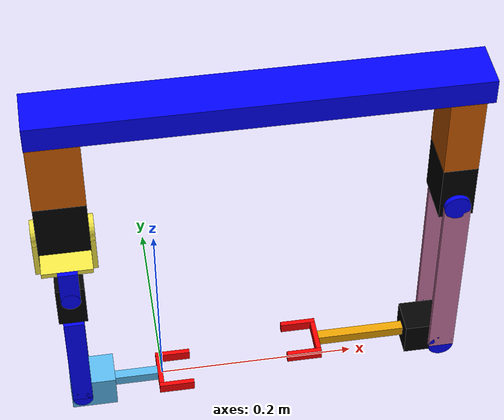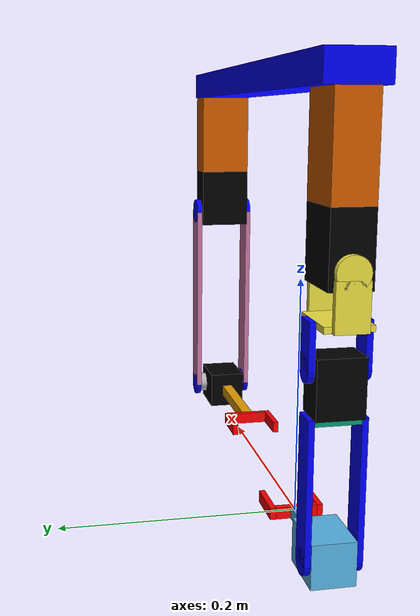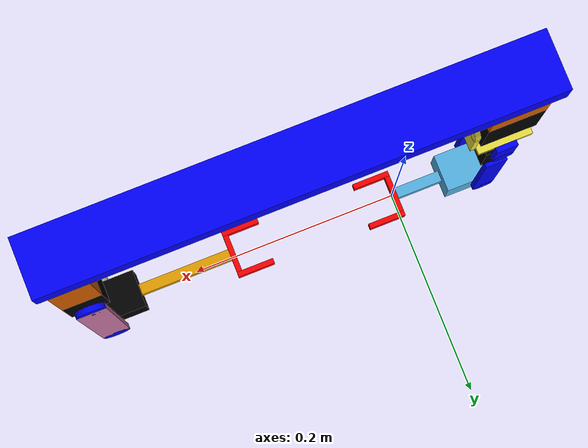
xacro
<?xml version="1.0"?>
<robot xmlns:xacro="http://www.ros.org/wiki/xacro" name="minibe">
    <xacro:arg name="initial_positions_file" default="initial_positions.yaml" />

    <!-- Import minibe urdf file -->
    <xacro:include filename="$(find minibe_description)/urdf/gripper_v2.xacro" />

    <!-- Import control_xacro -->
    <xacro:include filename="minibe.ros2_control.xacro" />

    <xacro:minibe_ros2_control name="FakeSystem" initial_positions_file="$(arg initial_positions_file)"/>

</robot>

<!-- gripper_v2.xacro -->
<robot xmlns:xacro="http://ros.org/wiki/xacro" name="minibe">

  <!-- UR5 Dimensions -->
  <xacro:property name="ur5_tool_rad" value="0.075"/>
  <xacro:property name="ur5_tool_height" value="0.0250"/>

  <!-- Servo Dimensions -->
  <xacro:property name="xh540_dim_len" value="0.0335"/>
  <xacro:property name="xh540_dim_width" value="0.050"/>
  <xacro:property name="xh540_dim_height" value="0.0585"/>
  <xacro:property name="xh540_servo_rad" value="${.5*0.026}"/>

  <xacro:property name="xm430_dim_len" value="0.0285"/>
  <xacro:property name="xm430_dim_width" value="0.0380"/>
  <xacro:property name="xm430_dim_height" value="0.0465"/>
  <xacro:property name="xm430_servo_rad" value="${.5*0.0195}"/>

  <xacro:property name="twoXC430_dim_len" value="0.036"/>
  <xacro:property name="twoXC430_dim_width" value="0.036"/>
  <xacro:property name="twoXC430_dim_height" value="0.0465"/>
  <xacro:property name="twoXC430_servo_rad" value="${0.0205/2}"/>

  <!-- Design Space (Variable Kinematic Dimensions) -->
  <xacro:property name="d0" value=".085"/>

  <xacro:property name="d1" value=".150"/>
  <xacro:property name="d1_B" value=".03525"/>
  <xacro:property name="d1_A" value="${d1-d1_B}"/>

  <xacro:property name="d2" value=".0750"/>
  <xacro:property name="d2_B" value="${.0585-.04475}"/>
  <xacro:property name="d2_A" value="${d2-d2_B}"/>

  <xacro:property name="d3" value=".125"/>
  <xacro:property name="d3_A" value="${.04475}"/>
  <xacro:property name="d3_B" value="${d3-d2_A}"/>

  <xacro:property name="d4" value=".25"/>
  <xacro:property name="d5" value=".125"/>

  <xacro:property name="d6" value=".125"/>
  <xacro:property name="d6_B" value="${.04475}"/>
  <xacro:property name="d6_A" value="${d6-d6_B}"/>

  <xacro:property name="d7" value=".200"/>
  <xacro:property name="d8" value=".100"/>
  <xacro:property name="d9" value=".025"/>

  <!-- Fixed Dimensions -->
  <xacro:property name="base_link_thickness" value=".025"/>
  <xacro:property name="gripper_width" value="${twoXC430_dim_width}"/>
  <xacro:property name="link_thickness" value=".005"/>
  <xacro:property name="total_base_len" value="${xh540_dim_width+link_thickness*2+d4+d5}"/>

  <!-- Colors___________________ -->
  <material name="red">
    <color rgba="1 0 0 .95"/>
  </material>
  <material name="green">
    <color rgba="0 1 0 .95"/>
  </material>
  <material name="blue">
    <color rgba="0 0 1 1"/>
  </material>
  <material name="black">
    <color rgba="0 0 0 .95"/>
  </material>
  <material name="green_fade">
    <color rgba="0 1 0 .25"/>
  </material>

  <!--World frame-->
  <link name="world"/>

  <!--Link 0 - Fixed End Effector -->
  <link name="link_d0_ee">
    <!--Gripper body-->
    <visual>
      <geometry>
        <box size="${twoXC430_servo_rad} ${gripper_width} ${link_thickness}"/>
      </geometry>
      <origin rpy="0 0 0" xyz="0 0 ${-link_thickness/2}"/>
      <material name="red"/>
    </visual>
    <collision>
      <geometry>
        <box size="${twoXC430_servo_rad} ${gripper_width} ${link_thickness}"/>
      </geometry>
      <origin rpy="0 0 0" xyz="0 0 ${-link_thickness/2}"/>
    </collision>

    <visual>
      <geometry>
        <box size="${twoXC430_servo_rad} ${link_thickness} ${gripper_width} " />
      </geometry>
      <origin rpy="0 0 0" xyz="0 ${-.5*(gripper_width + link_thickness)} ${gripper_width/2-link_thickness}"/>
      <material name="red"/>
    </visual>
    <collision>
      <geometry>
        <box size="${twoXC430_servo_rad} ${link_thickness} ${gripper_width} " />
      </geometry>
      <origin rpy="0 0 0" xyz="0 ${-.5*(gripper_width + link_thickness)} ${gripper_width/2-link_thickness}"/>
    </collision>
    <visual>
      <geometry>
        <box size="${twoXC430_servo_rad} ${link_thickness} ${gripper_width} " />
      </geometry>
      <origin rpy="0 0 0" xyz="0 ${.5*(gripper_width + link_thickness)} ${gripper_width/2-link_thickness}"/>
      <material name="red"/>
    </visual>
    <collision>
      <geometry>
        <box size="${twoXC430_servo_rad} ${link_thickness} ${gripper_width} " />
      </geometry>
      <origin rpy="0 0 0" xyz="0 ${.5*(gripper_width + link_thickness)} ${gripper_width/2-link_thickness}"/>
    </collision>

    <visual>
      <geometry>
        <box size="${twoXC430_dim_len} ${twoXC430_dim_width} ${twoXC430_dim_height}"/>
      </geometry>
      <origin rpy="0 0 0" xyz="0 0 ${-d0 + twoXC430_dim_height/2-.01125}"/>
    </visual>
    <collision>`
      <geometry>
        <box size="${twoXC430_dim_len} ${twoXC430_dim_width} ${twoXC430_dim_height}"/>
      </geometry>
      <origin rpy="0 0 0" xyz="0 0 ${-d0 + twoXC430_dim_height/2-.01125}"/>
    </collision>

    <visual>
      <geometry>
        <box size="${twoXC430_servo_rad} ${twoXC430_servo_rad} ${d0-(link_thickness)-(twoXC430_dim_height-.01125)}"/>
      </geometry>
      <origin rpy="0 0 0" xyz="0 0 ${(-d0+(twoXC430_dim_height-.01125)-link_thickness)/2}"/>
    </visual>
    <collision>`
      <geometry>
        <box size="${twoXC430_servo_rad} ${twoXC430_servo_rad} ${d0-(link_thickness)-(twoXC430_dim_height-.01125)}"/>
      </geometry>
      <origin rpy="0 0 0" xyz="0 0 ${(-d0+(twoXC430_dim_height-.01125)-link_thickness)/2}"/>
    </collision>

  </link>

  <link name="link_d1">
    <visual>
      <geometry>
        <cylinder radius="${twoXC430_servo_rad}" length="${link_thickness}"/>
      </geometry>
      <origin rpy="0 0 0" xyz="0 0 ${-.5*(twoXC430_dim_len+link_thickness)}"/>
      <material name="blue"/>
    </visual>
    <collision>
      <geometry>
        <cylinder radius="${twoXC430_servo_rad}" length="${link_thickness}"/>
      </geometry>
      <origin rpy="0 0 0" xyz="0 0 ${-.5*(twoXC430_dim_len+link_thickness)}"/>
    </collision>
    <visual>
      <geometry>
        <box size="${d1_A} ${2*twoXC430_servo_rad} ${link_thickness}"/>
      </geometry>
      <origin rpy="0 0 0" xyz="${-.5*(d1_A)} 0 ${-.5*(twoXC430_dim_len+link_thickness)}"/>
      <material name="blue"/>
    </visual>
    <collision>
      <geometry>
        <box size="${d1_A} ${2*twoXC430_servo_rad} ${link_thickness}"/>
      </geometry>
      <origin rpy="0 0 0" xyz="${-.5*(d1_A)} 0 ${-.5*(twoXC430_dim_len+link_thickness)}"/>
    </collision>
    <visual>
      <geometry>
        <cylinder radius="${twoXC430_servo_rad}" length="${link_thickness}"/>
      </geometry>
      <origin rpy="0 0 0" xyz="0 0 ${.5*(twoXC430_dim_len+link_thickness)}"/>
      <material name="blue"/>
    </visual>
    <collision>
      <geometry>
        <cylinder radius="${twoXC430_servo_rad}" length="${link_thickness}"/>
      </geometry>
      <origin rpy="0 0 0" xyz="0 0 ${.5*(twoXC430_dim_len+link_thickness)}"/>
    </collision>
    <visual>
      <geometry>
        <box size="${d1_A} ${2*twoXC430_servo_rad} ${link_thickness}"/>
      </geometry>
      <origin rpy="0 0 0" xyz="${-.5*(d1_A)} 0 ${.5*(twoXC430_dim_len+link_thickness)}"/>
      <material name="blue"/>
    </visual>
    <collision>
      <geometry>
        <box size="${d1_A} ${2*twoXC430_servo_rad} ${link_thickness}"/>
      </geometry>
      <origin rpy="0 0 0" xyz="${-.5*(d1_A)} 0 ${.5*(twoXC430_dim_len+link_thickness)}"/>
    </collision>
    <visual>
      <geometry>
        <box size="${link_thickness} ${2*twoXC430_servo_rad} ${twoXC430_dim_len}"/>
      </geometry>
      <origin rpy="0 0 0" xyz="${-d1_A + link_thickness/2} 0 0 "/>
    </visual>
    <collision>
      <geometry>
        <box size="${link_thickness} ${2*twoXC430_servo_rad} ${twoXC430_dim_len}"/>
      </geometry>
      <origin rpy="0 0 0" xyz="${-d1_A + link_thickness/2} 0 0 "/>
    </collision>

    <visual>
      <geometry>
        <box size="${xm430_dim_height} ${xm430_dim_len} ${xm430_dim_width}"/>
      </geometry>
      <origin rpy="0 0 0" xyz="${-1*(d1_A + .5*xm430_dim_height)} 0 0 "/>
      <material name="black"/>
    </visual>
    <collision>
      <geometry>
        <box size="${xm430_dim_height} ${xm430_dim_len} ${xm430_dim_width}"/>
      </geometry>
      <origin rpy="0 0 0" xyz="${-1*(d1_A + .5*xm430_dim_height)} 0 0 "/>
    </collision>
  </link>

  <link name="link_d2">
    <visual>
      <geometry>
        <cylinder radius="${xm430_servo_rad}" length="${link_thickness}"/>
      </geometry>
      <origin rpy="0 0 0" xyz="0 0 ${-.5*(xm430_dim_width+link_thickness)}"/>
      <material name="blue"/>
    </visual>
    <collision>
      <geometry>
        <cylinder radius="${xm430_servo_rad}" length="${link_thickness}"/>
      </geometry>
      <origin rpy="0 0 0" xyz="0 0 ${-.5*(xm430_dim_width+link_thickness)}"/>
    </collision>
    <visual>
      <geometry>
        <box size="${d2/2} ${2*xm430_servo_rad} ${link_thickness}"/>
      </geometry>
      <origin rpy="0 0 0" xyz="${-.5*(d2/2)} 0 ${-.5*(xm430_dim_width+link_thickness)}"/>
      <material name="blue"/>
    </visual>
    <collision>
      <geometry>
        <box size="${d2/2} ${2*xm430_servo_rad} ${link_thickness}"/>
      </geometry>
      <origin rpy="0 0 0" xyz="${-.5*(d2/2)} 0 ${-.5*(xm430_dim_width+link_thickness)}"/>
    </collision>
    <visual>
      <geometry>
        <cylinder radius="${xm430_servo_rad}" length="${link_thickness}"/>
      </geometry>
      <origin rpy="0 0 0" xyz="0 0 ${.5*(xm430_dim_width+link_thickness)}"/>
      <material name="blue"/>
    </visual>
    <collision>
      <geometry>
        <cylinder radius="${xm430_servo_rad}" length="${link_thickness}"/>
      </geometry>
      <origin rpy="0 0 0" xyz="0 0 ${.5*(xm430_dim_width+link_thickness)}"/>
    </collision>
    <visual>
      <geometry>
        <box size="${d2/2} ${2*xm430_servo_rad} ${link_thickness}"/>
      </geometry>
      <origin rpy="0 0 0" xyz="${-.5*(d2/2)} 0 ${.5*(xm430_dim_width+link_thickness)}"/>
      <material name="blue"/>
    </visual>
    <collision>
      <geometry>
        <box size="${d2/2} ${2*xm430_servo_rad} ${link_thickness}"/>
      </geometry>
      <origin rpy="0 0 0" xyz="${-.5*(d2/2)} 0 ${.5*(xm430_dim_width+link_thickness)}"/>
    </collision>

    <visual>
      <geometry>
        <box size="${link_thickness} ${xh540_dim_width} ${xm430_dim_width}"/>
      </geometry>
      <origin rpy="0 0 0" xyz="${-d2/2 + link_thickness/2} 0 0"/>
    </visual>
    <collision>
      <geometry>
        <box size="${link_thickness} ${xh540_dim_width} ${xm430_dim_width}"/>
      </geometry>
      <origin rpy="0 0 0" xyz="${-d2/2 + link_thickness/2} 0 0"/>
    </collision>

    <visual>
      <geometry>
        <cylinder radius="${xh540_servo_rad}" length="${link_thickness}"/>
      </geometry>
      <origin rpy="${pi/2} 0 0" xyz="${-d2} ${xh540_dim_width/2 + link_thickness/2} 0"/>
    </visual>
    <collision>
      <geometry>
        <cylinder radius="${xh540_servo_rad}" length="${link_thickness}"/>
      </geometry>
      <origin rpy="${pi/2} 0 0" xyz="${-d2} ${xh540_dim_width/2 + link_thickness/2} 0"/>
    </collision>
    <visual>
      <geometry>
        <box size="${d2/2} ${link_thickness} ${2*xh540_servo_rad}" />
      </geometry>
      <origin rpy="0 0 0" xyz="${-.75*d2+link_thickness} ${xh540_dim_width/2 + link_thickness/2} 0" />
    </visual>
    <collision>
      <geometry>
        <box size="${d2/2} ${link_thickness} ${2*xh540_servo_rad}" />
      </geometry>
      <origin rpy="0 0 0" xyz="${-.75*d2+link_thickness} ${xh540_dim_width/2 + link_thickness/2} 0" />
    </collision>

    <visual>
      <geometry>
        <cylinder radius="${xh540_servo_rad}" length="${link_thickness}"/>
      </geometry>
      <origin rpy="${pi/2} 0 0" xyz="${-d2} ${-(xh540_dim_width/2 + link_thickness/2)} 0"/>
    </visual>
    <collision>
      <geometry>
        <cylinder radius="${xh540_servo_rad}" length="${link_thickness}"/>
      </geometry>
      <origin rpy="${pi/2} 0 0" xyz="${-d2} ${-(xh540_dim_width/2 + link_thickness/2)} 0"/>
    </collision>
    <visual>
      <geometry>
        <box size="${d2/2} ${link_thickness} ${2*xh540_servo_rad}" />
      </geometry>
      <origin rpy="0 0 0" xyz="${-.75*d2+link_thickness} ${-(xh540_dim_width/2 + link_thickness/2)} 0" />
    </visual>
    <collision>
      <geometry>
        <box size="${d2/2} ${link_thickness} ${2*xh540_servo_rad}" />
      </geometry>
      <origin rpy="0 0 0" xyz="${-.75*d2+link_thickness} ${-(xh540_dim_width/2 + link_thickness/2)} 0" />
    </collision>
  </link>

  <link name = "link_d3">
    <visual>
      <geometry>
        <box size="${xh540_dim_height} ${xh540_dim_len} ${xh540_dim_width} "/>
      </geometry>
      <origin xyz="${-(xh540_dim_height/2-.01375)} 0 0" rpy="0 0 0"/>
      <material name="black"/>
    </visual>
    <collision>
      <geometry>
        <box size="${xh540_dim_height} ${xh540_dim_len} ${xh540_dim_width} "/>
      </geometry>
      <origin xyz="${-(xh540_dim_height/2-.01375)} 0 0" rpy="0 0 0"/>
    </collision>
  </link>

  <link name="link_d4_base">
    <visual>
      <geometry>
        <box size="${ur5_tool_height} ${xh540_dim_width} ${d4+d5+xh540_dim_width}"/>
      </geometry>
      <origin rpy = "0 0 0" xyz="${-.5*ur5_tool_height} 0 ${-(d4-(d4+d5)/2)}"/>
      <material name="blue"/>
    </visual>
    <collision>
      <geometry>
        <box size="${ur5_tool_height} ${xh540_dim_width} ${d4+d5+xh540_dim_width}"/>
      </geometry>
      <origin rpy = "0 0 0" xyz="${-.5*ur5_tool_height} 0 ${-(d4-(d4+d5)/2)}"/>
    </collision>

    <visual>
      <geometry>
        <box size="${d3-xh540_dim_height+.01375} ${xh540_dim_len} ${xh540_dim_width}"/>
      </geometry>
      <origin rpy="0 0 0" xyz="${(d3-xh540_dim_height+.01375)/2} 0  ${-d4}"/>
    </visual>
    <collision>
      <geometry>
        <box size="${d3-xh540_dim_height+.01375} ${xh540_dim_len} ${xh540_dim_width}"/>
      </geometry>
      <origin rpy="0 0 0" xyz="${(d3-xh540_dim_height+.01375)/2} 0  ${-d4}"/>
    </collision>
    <visual>
      <geometry>
        <box size="${d6-xh540_dim_height+.01375} ${xh540_dim_width} ${xh540_dim_len}"/>
      </geometry>
      <origin rpy="0 0 0" xyz="${(d6-xh540_dim_height+.01375)/2} 0  ${d5}"/>
    </visual>
    <collision>
      <geometry>
        <box size="${d6-xh540_dim_height+.01375} ${xh540_dim_width} ${xh540_dim_len}"/>
      </geometry>
      <origin rpy="0 0 0" xyz="${(d6-xh540_dim_height+.01375)/2} 0  ${d5}"/>
    </collision>
    <visual>
      <geometry>
        <box size="${xh540_dim_height} ${xh540_dim_width} ${xh540_dim_len}"/>
      </geometry>
      <origin rpy="0 0 0" xyz="${d6-(xh540_dim_height/2-.01375)} 0  ${d5}"/>
      <material name="black"/>
    </visual>
    <collision>
      <geometry>
        <box size="${xh540_dim_height} ${xh540_dim_width} ${xh540_dim_len}"/>
      </geometry>
      <origin rpy="0 0 0" xyz="${d6-(xh540_dim_height/2-.01375)} 0  ${d5}"/>
    </collision>

  </link>

  <link name="link_d5">
    <visual>
      <geometry>
        <cylinder radius="${xh540_servo_rad}" length="${link_thickness}"/>
      </geometry>
      <origin rpy="0 0 0" xyz="${0} 0 ${-(xh540_dim_width/2 + link_thickness/2)}"/>
      <material name="blue"/>
    </visual>
    <collision>
      <geometry>
        <cylinder radius="${xh540_servo_rad}" length="${link_thickness}"/>
      </geometry>
      <origin rpy="0 0 0" xyz="${0} 0 ${-(xh540_dim_width/2 + link_thickness/2)}"/>
    </collision>

    <visual>
      <geometry>
        <box size="${d7} ${2*xh540_servo_rad} ${link_thickness}"/>
      </geometry>
      <origin rpy="0 0 0" xyz="${d7/2} 0 ${-(xh540_dim_width/2 + link_thickness/2)}"/>
    </visual>
    <collision>
      <geometry>
        <box size="${d7} ${2*xh540_servo_rad} ${link_thickness}"/>
      </geometry>
      <origin rpy="0 0 0" xyz="${d7/2} 0 ${-(xh540_dim_width/2 + link_thickness/2)}"/>
    </collision>

    <visual>
      <geometry>
        <cylinder radius="${xh540_servo_rad}" length="${link_thickness}"/>
      </geometry>
      <origin rpy="0 0 0" xyz="${0} 0 ${(xh540_dim_width/2 + link_thickness/2)}"/>
      <material name="blue"/>
    </visual>
    <collision>
      <geometry>
        <cylinder radius="${xh540_servo_rad}" length="${link_thickness}"/>
      </geometry>
      <origin rpy="0 0 0" xyz="${0} 0 ${(xh540_dim_width/2 + link_thickness/2)}"/>
    </collision>
    <visual>
      <geometry>
        <box size="${d7} ${2*xh540_servo_rad} ${link_thickness}"/>
      </geometry>
      <origin rpy="0 0 0" xyz="${d7/2} 0 ${(xh540_dim_width/2 + link_thickness/2)}"/>
    </visual>
    <collision>
      <geometry>
        <box size="${d7} ${2*xh540_servo_rad} ${link_thickness}"/>
      </geometry>
      <origin rpy="0 0 0" xyz="${d7/2} 0 ${(xh540_dim_width/2 + link_thickness/2)}"/>
    </collision>

    <visual>
      <geometry>
        <cylinder radius="${xh540_servo_rad}" length="${link_thickness}"/>
      </geometry>
      <origin rpy="0 0 0" xyz="${d7} 0 ${-(xh540_dim_width/2 + link_thickness/2)}"/>
      <material name="blue"/>
    </visual>
    <collision>
      <geometry>
        <cylinder radius="${xh540_servo_rad}" length="${link_thickness}"/>
      </geometry>
      <origin rpy="0 0 0" xyz="${d7} 0 ${-(xh540_dim_width/2 + link_thickness/2)}"/>
      <material name="blue"/>
    </collision>
    <visual>
      <geometry>
        <cylinder radius="${xh540_servo_rad}" length="${link_thickness}"/>
      </geometry>
      <origin rpy="0 0 0" xyz="${d7} 0 ${(xh540_dim_width/2 + link_thickness/2)}"/>
      <material name="blue"/>
    </visual>
    <collision>
      <geometry>
        <cylinder radius="${xh540_servo_rad}" length="${link_thickness}"/>
      </geometry>
      <origin rpy="0 0 0" xyz="${d7} 0 ${(xh540_dim_width/2 + link_thickness/2)}"/>
      <material name="blue"/>
    </collision>

  </link>

  <link name="link_d6">
    <visual>
      <geometry>
        <box size="${twoXC430_dim_width} ${twoXC430_dim_height} ${twoXC430_dim_len}"/>
      </geometry>
      <origin rpy="0 0 0" xyz="0 ${-(twoXC430_dim_height/2-.01125)} 0"/>
      <material name="black"/>
    </visual>
    <collision>
      <geometry>
        <box size="${twoXC430_dim_width} ${twoXC430_dim_height} ${twoXC430_dim_len}"/>
      </geometry>
      <origin rpy="0 0 0" xyz="0 ${-(twoXC430_dim_height/2-.01125)} 0"/>
    </collision>

    <visual>
      <geometry>
        <cylinder radius="${twoXC430_servo_rad}" length="${(xh540_dim_width-twoXC430_dim_width)/2}"/>
      </geometry>
      <origin rpy="0 0 0" xyz="0 0 ${(xh540_dim_width-twoXC430_dim_width)/4 + (twoXC430_dim_width/2)}"/>
    </visual>
    <collision>
      <geometry>
        <cylinder radius="${twoXC430_servo_rad}" length="${(xh540_dim_width-twoXC430_dim_width)/2}"/>
      </geometry>
      <origin rpy="0 0 0" xyz="0 0 ${(xh540_dim_width-twoXC430_dim_width)/4 + (twoXC430_dim_width/2)}"/>
    </collision>

    <visual>
      <geometry>
        <cylinder radius="${twoXC430_servo_rad}" length="${(xh540_dim_width-twoXC430_dim_width)/2}"/>
      </geometry>
      <origin rpy="0 0 0" xyz="0 0 ${-((xh540_dim_width-twoXC430_dim_width)/4 + (twoXC430_dim_width/2))}"/>
    </visual>
    <collision>
      <geometry>
        <cylinder radius="${twoXC430_servo_rad}" length="${(xh540_dim_width-twoXC430_dim_width)/2}"/>
      </geometry>
      <origin rpy="0 0 0" xyz="0 0 ${-((xh540_dim_width-twoXC430_dim_width)/4 + (twoXC430_dim_width/2))}"/>
    </collision>

  </link>

  <link name="link_d7">

    <visual>
      <geometry>
        <box size="${twoXC430_servo_rad} ${twoXC430_servo_rad} ${d8-(twoXC430_dim_height-.01125)+d9}"/>
      </geometry>
      <origin rpy="0 0 0" xyz="0 0 ${-(d8-(twoXC430_dim_height-.01125)-d9)/2}"/>
    </visual>
    <collision>
      <geometry>
        <box size="${twoXC430_servo_rad} ${twoXC430_servo_rad} ${d8-(twoXC430_dim_height-.01125)+d9}"/>
      </geometry>
      <origin rpy="0 0 0" xyz="0 0 ${-(d8-(twoXC430_dim_height-.01125)-d9)/2}"/>
    </collision>

  </link>

  <link name="link_d8_ee">
    <visual>
      <geometry>
        <box size="${twoXC430_servo_rad} ${link_thickness} ${gripper_width} " />
      </geometry>
      <origin rpy="0 0 0" xyz="0 ${-.5*(gripper_width + link_thickness)} ${gripper_width/2-link_thickness}"/>
      <material name="red"/>
    </visual>
    <collision>
      <geometry>
        <box size="${twoXC430_servo_rad} ${link_thickness} ${gripper_width} " />
      </geometry>
      <origin rpy="0 0 0" xyz="0 ${-.5*(gripper_width + link_thickness)} ${gripper_width/2-link_thickness}"/>
    </collision>

    <visual>
      <geometry>
        <box size="${twoXC430_servo_rad} ${link_thickness} ${gripper_width} " />
      </geometry>
      <origin rpy="0 0 0" xyz="0 ${.5*(gripper_width + link_thickness)} ${gripper_width/2-link_thickness}"/>
      <material name="red"/>
    </visual>
    <collision>
      <geometry>
        <box size="${twoXC430_servo_rad} ${link_thickness} ${gripper_width} " />
      </geometry>
      <origin rpy="0 0 0" xyz="0 ${.5*(gripper_width + link_thickness)} ${gripper_width/2-link_thickness}"/>
    </collision>

    <visual>
      <geometry>
        <box size="${twoXC430_servo_rad} ${gripper_width} ${link_thickness}"/>
      </geometry>
      <origin rpy="0 0 0" xyz="0 0 ${-link_thickness/2}"/>
      <material name="red"/>
    </visual>
    <collision>
      <geometry>
        <box size="${twoXC430_servo_rad} ${gripper_width} ${link_thickness}"/>
      </geometry>
      <origin rpy="0 0 0" xyz="0 0 ${-link_thickness/2}"/>
    </collision>
  </link>

  <joint name="frame0_ee" type="fixed">
    <parent link="world"/>
    <child link="link_d0_ee"/>
    <origin xyz="0 0 0" rpy="0 ${pi/2} 0"/>
  </joint>

  <joint name="joint_A1" type="revolute">
    <parent link="link_d0_ee"/>
    <child link="link_d1"/>
    <origin xyz="0 0 ${-d0}" rpy="${pi/2} 0 0"/>
    <axis xyz="0 0 1"/>
    <limit lower="-0.698" upper="3.491" effort="10.0" velocity="1.0"/>
  </joint>

  <joint name="joint_A2" type="revolute">
    <parent link="link_d1"/>
    <child link="link_d2"/>
    <origin xyz="${-1*d1} 0 0" rpy="0 0 0"/>
    <axis xyz="0 0 1"/>
    <limit lower="-2.094" upper="2.094" effort="10.0" velocity="1.0"/>
  </joint>

  <joint name="joint_A3" type="revolute">
    <parent link="link_d2"/>
    <child link="link_d3"/>
    <origin xyz="${-1*d2} 0 0" rpy="${-pi/2} 0 0"/>
    <axis xyz="0 0 1"/>
    <limit lower="-2.094" upper="2.094" effort="10.0" velocity="1.0"/>
  </joint>

  <joint name="ur5_frame" type="fixed">
    <parent link="link_d3"/>
    <child link="link_d4_base"/>
    <origin xyz="${-1*(d3)} 0 ${(d4)}" rpy="0 0 0"/>
  </joint>

  <joint name="joint_B1" type="revolute">
    <parent link="link_d4_base"/>
    <child link="link_d5"/>
    <origin xyz="${d6} 0 ${(d5)}" rpy="${pi/2} 0 0"/>
    <axis xyz="0 0 1"/>
    <limit lower="-2.094" upper="2.094" effort="10.0" velocity="1.0"/>
  </joint>

  <joint name="joint_B2" type="revolute">
    <parent link="link_d5"/>
    <child link="link_d6"/>
    <origin xyz="${d7} 0 0" rpy="0 0 0"/>
    <axis xyz="0 0 1"/>
    <limit lower="-0.698" upper="3.491" effort="10.0" velocity="1.0"/>
  </joint>

  <joint name="joint_B3" type="revolute">
    <parent link="link_d6"/>
    <child link="link_d7"/>
    <origin xyz="${0} ${-d8} 0" rpy="${pi/2} 0 0"/>
    <axis xyz="0 0 1"/>
    <limit lower="${-pi}" upper="${pi}" effort="10.0" velocity="1.0"/>
  </joint>

  <joint name="ee_B" type="fixed">
    <parent link="link_d7"/>
    <child link="link_d8_ee"/>
    <origin xyz="0 0 ${d9+link_thickness}" rpy="0 0 0"/>
  </joint>

</robot>
